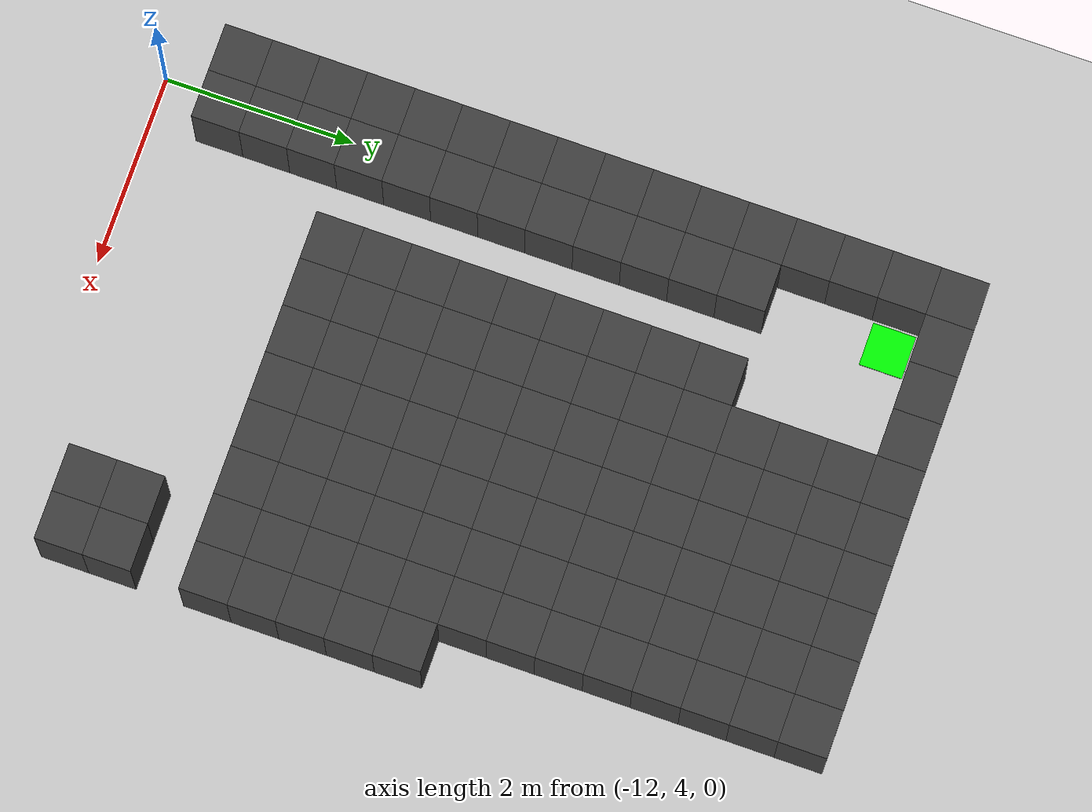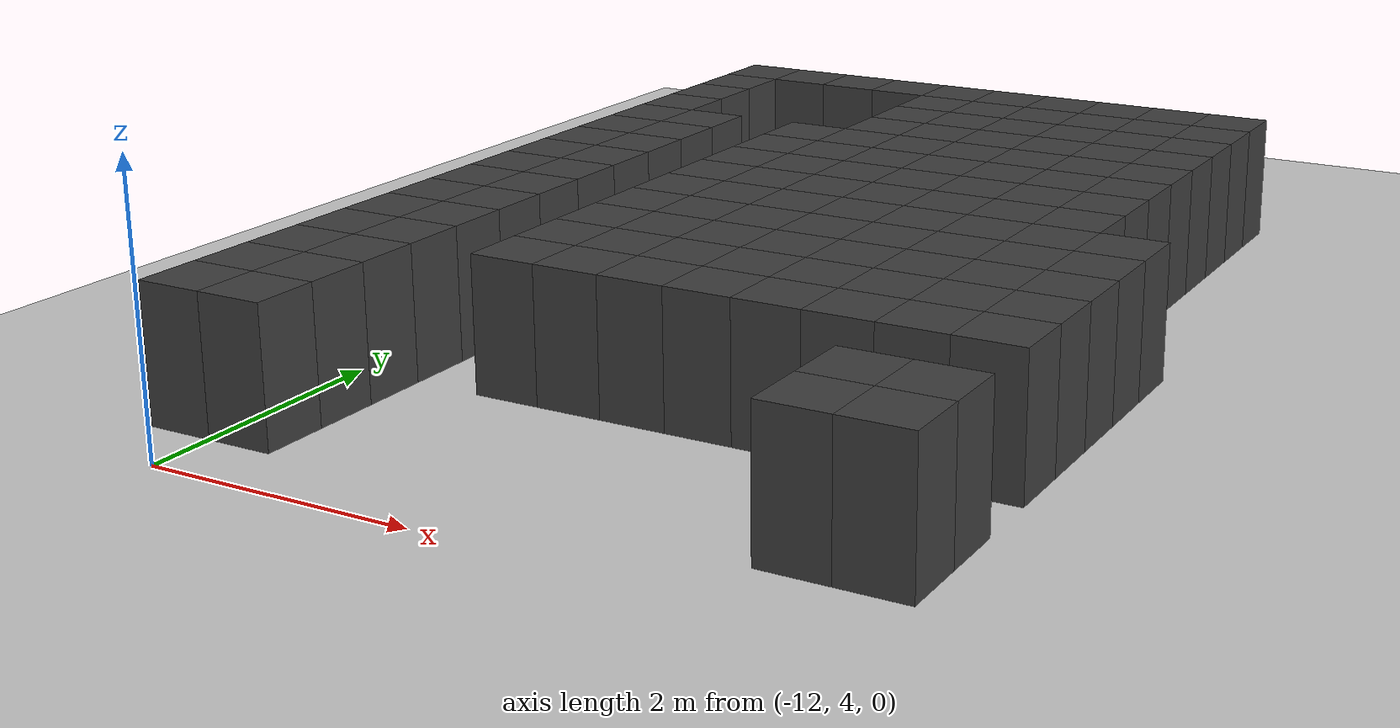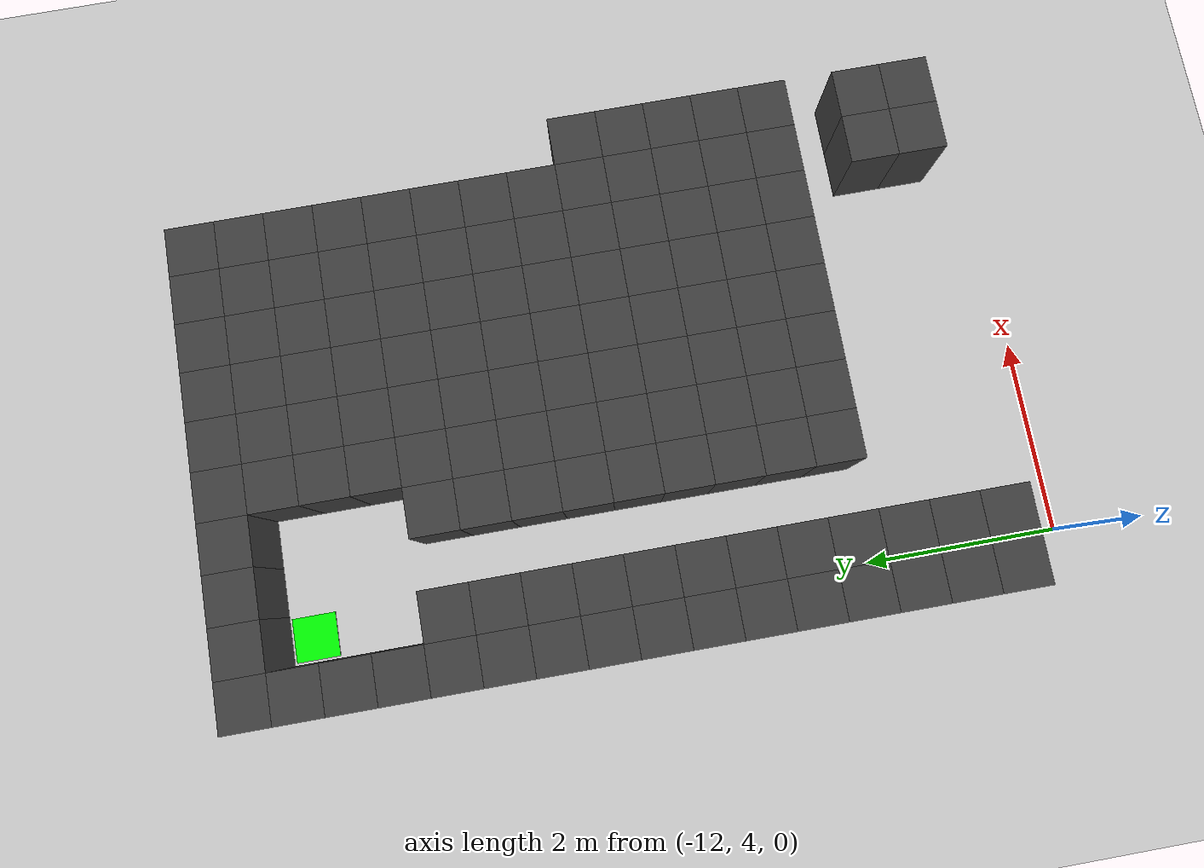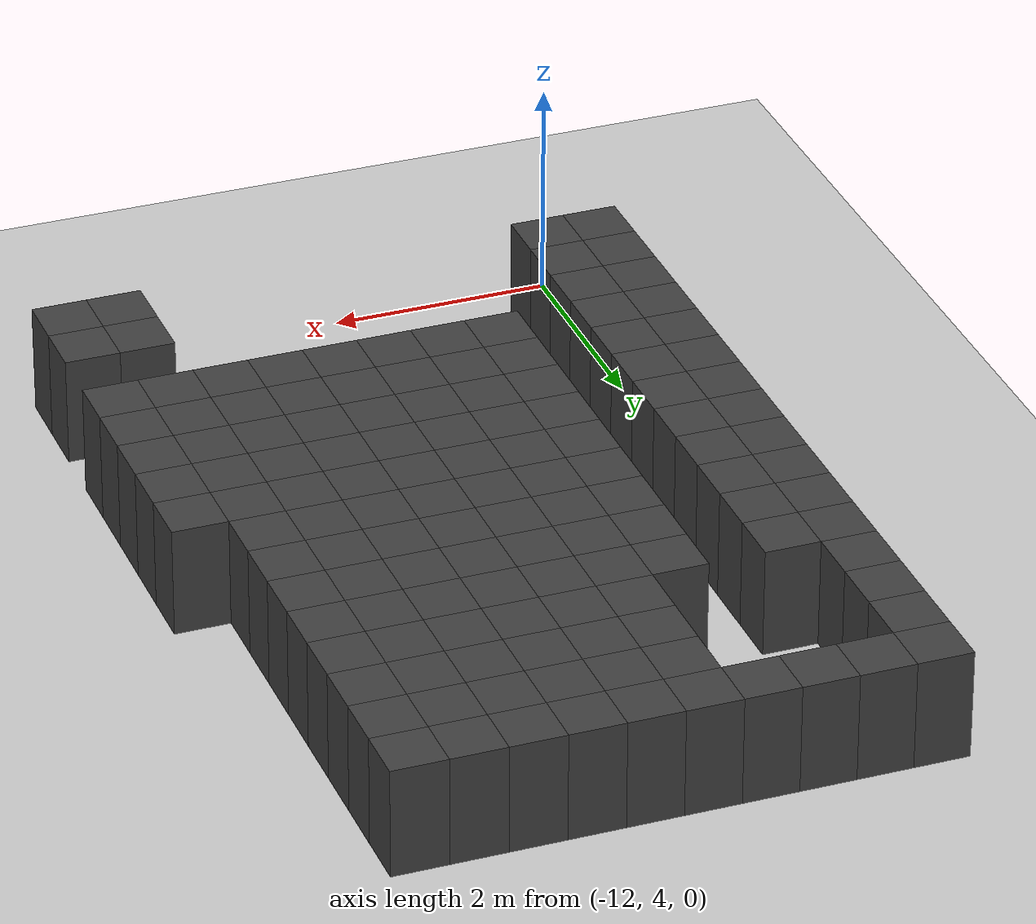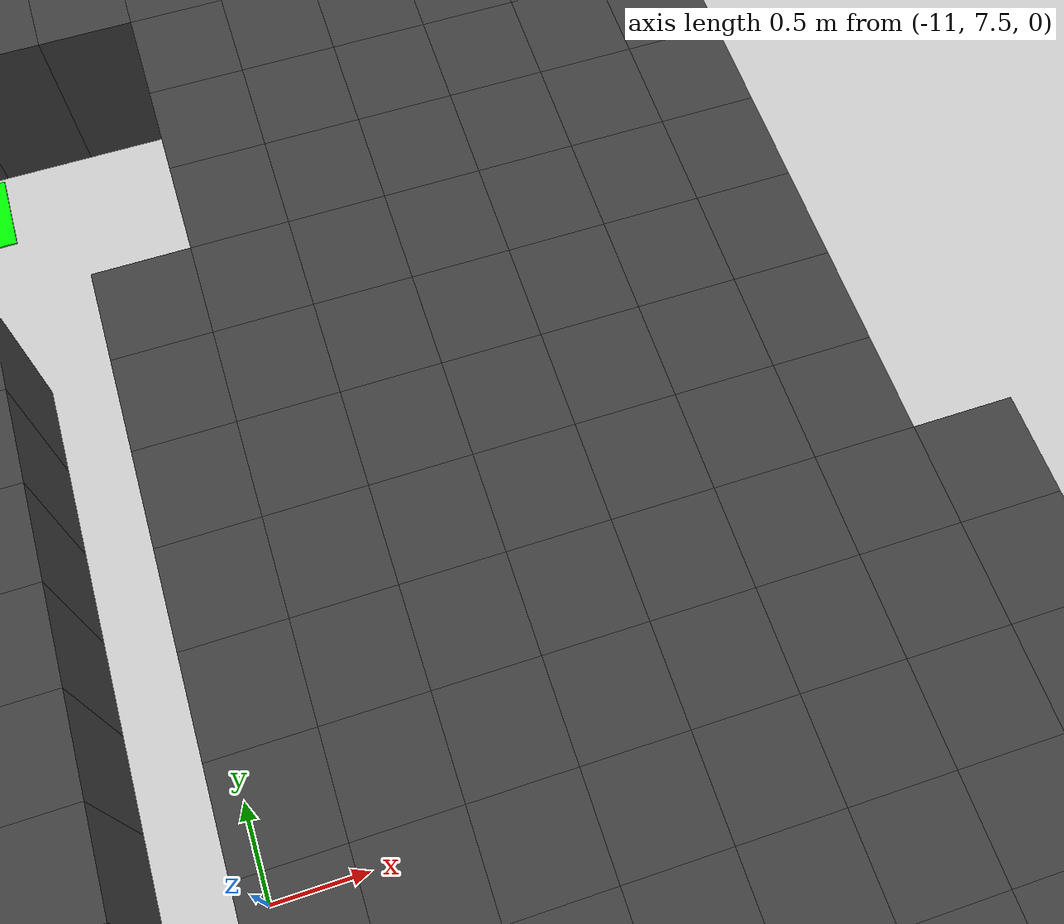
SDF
<sdf version="1.7">
 <world name="map_14056">
  <model name="ground_plane">
   <static>true</static>
   <link name="link">
    <collision name="collision">
     <geometry><plane><normal>0 0 1</normal><size>200 200</size></plane></geometry>
    </collision>
    <visual name="visual">
     <geometry><plane><normal>0 0 1</normal><size>200 200</size></plane></geometry>
     <material><ambient>0.8 0.8 0.8 1</ambient><diffuse>0.8 0.8 0.8 1</diffuse></material>
    </visual>
   </link>
  </model>
  <model name="maze_environment">
   <static>true</static>
   <link name="wall_0">
    <pose>-12.250 12.250 0.500 0 0 0</pose>
    <collision name="col"><geometry><box><size>0.5 0.5 1.0</size></box></geometry></collision>
    <visual name="vis">
     <geometry><box><size>0.5 0.5 1.0</size></box></geometry>
     <material><ambient>0.15 0.15 0.15 1</ambient><diffuse>0.25 0.25 0.25 1</diffuse></material>
    </visual>
   </link>
   <link name="wall_1">
    <pose>-11.750 12.250 0.500 0 0 0</pose>
    <collision name="col"><geometry><box><size>0.5 0.5 1.0</size></box></geometry></collision>
    <visual name="vis">
     <geometry><box><size>0.5 0.5 1.0</size></box></geometry>
     <material><ambient>0.15 0.15 0.15 1</ambient><diffuse>0.25 0.25 0.25 1</diffuse></material>
    </visual>
   </link>
   <link name="wall_2">
    <pose>-11.250 12.250 0.500 0 0 0</pose>
    <collision name="col"><geometry><box><size>0.5 0.5 1.0</size></box></geometry></collision>
    <visual name="vis">
     <geometry><box><size>0.5 0.5 1.0</size></box></geometry>
     <material><ambient>0.15 0.15 0.15 1</ambient><diffuse>0.25 0.25 0.25 1</diffuse></material>
    </visual>
   </link>
   <link name="wall_3">
    <pose>-10.750 12.250 0.500 0 0 0</pose>
    <collision name="col"><geometry><box><size>0.5 0.5 1.0</size></box></geometry></collision>
    <visual name="vis">
     <geometry><box><size>0.5 0.5 1.0</size></box></geometry>
     <material><ambient>0.15 0.15 0.15 1</ambient><diffuse>0.25 0.25 0.25 1</diffuse></material>
    </visual>
   </link>
   <link name="wall_4">
    <pose>-10.250 12.250 0.500 0 0 0</pose>
    <collision name="col"><geometry><box><size>0.5 0.5 1.0</size></box></geometry></collision>
    <visual name="vis">
     <geometry><box><size>0.5 0.5 1.0</size></box></geometry>
     <material><ambient>0.15 0.15 0.15 1</ambient><diffuse>0.25 0.25 0.25 1</diffuse></material>
    </visual>
   </link>
   <link name="wall_5">
    <pose>-9.750 12.250 0.500 0 0 0</pose>
    <collision name="col"><geometry><box><size>0.5 0.5 1.0</size></box></geometry></collision>
    <visual name="vis">
     <geometry><box><size>0.5 0.5 1.0</size></box></geometry>
     <material><ambient>0.15 0.15 0.15 1</ambient><diffuse>0.25 0.25 0.25 1</diffuse></material>
    </visual>
   </link>
   <link name="wall_6">
    <pose>-9.250 12.250 0.500 0 0 0</pose>
    <collision name="col"><geometry><box><size>0.5 0.5 1.0</size></box></geometry></collision>
    <visual name="vis">
     <geometry><box><size>0.5 0.5 1.0</size></box></geometry>
     <material><ambient>0.15 0.15 0.15 1</ambient><diffuse>0.25 0.25 0.25 1</diffuse></material>
    </visual>
   </link>
   <link name="wall_7">
    <pose>-8.750 12.250 0.500 0 0 0</pose>
    <collision name="col"><geometry><box><size>0.5 0.5 1.0</size></box></geometry></collision>
    <visual name="vis">
     <geometry><box><size>0.5 0.5 1.0</size></box></geometry>
     <material><ambient>0.15 0.15 0.15 1</ambient><diffuse>0.25 0.25 0.25 1</diffuse></material>
    </visual>
   </link>
   <link name="wall_8">
    <pose>-8.250 12.250 0.500 0 0 0</pose>
    <collision name="col"><geometry><box><size>0.5 0.5 1.0</size></box></geometry></collision>
    <visual name="vis">
     <geometry><box><size>0.5 0.5 1.0</size></box></geometry>
     <material><ambient>0.15 0.15 0.15 1</ambient><diffuse>0.25 0.25 0.25 1</diffuse></material>
    </visual>
   </link>
   <link name="wall_9">
    <pose>-7.750 12.250 0.500 0 0 0</pose>
    <collision name="col"><geometry><box><size>0.5 0.5 1.0</size></box></geometry></collision>
    <visual name="vis">
     <geometry><box><size>0.5 0.5 1.0</size></box></geometry>
     <material><ambient>0.15 0.15 0.15 1</ambient><diffuse>0.25 0.25 0.25 1</diffuse></material>
    </visual>
   </link>
   <link name="wall_50">
    <pose>-12.250 11.750 0.500 0 0 0</pose>
    <collision name="col"><geometry><box><size>0.5 0.5 1.0</size></box></geometry></collision>
    <visual name="vis">
     <geometry><box><size>0.5 0.5 1.0</size></box></geometry>
     <material><ambient>0.15 0.15 0.15 1</ambient><diffuse>0.25 0.25 0.25 1</diffuse></material>
    </visual>
   </link>
   <link name="wall_51">
    <pose>-10.250 11.750 0.500 0 0 0</pose>
    <collision name="col"><geometry><box><size>0.5 0.5 1.0</size></box></geometry></collision>
    <visual name="vis">
     <geometry><box><size>0.5 0.5 1.0</size></box></geometry>
     <material><ambient>0.15 0.15 0.15 1</ambient><diffuse>0.25 0.25 0.25 1</diffuse></material>
    </visual>
   </link>
   <link name="wall_52">
    <pose>-9.750 11.750 0.500 0 0 0</pose>
    <collision name="col"><geometry><box><size>0.5 0.5 1.0</size></box></geometry></collision>
    <visual name="vis">
     <geometry><box><size>0.5 0.5 1.0</size></box></geometry>
     <material><ambient>0.15 0.15 0.15 1</ambient><diffuse>0.25 0.25 0.25 1</diffuse></material>
    </visual>
   </link>
   <link name="wall_53">
    <pose>-9.250 11.750 0.500 0 0 0</pose>
    <collision name="col"><geometry><box><size>0.5 0.5 1.0</size></box></geometry></collision>
    <visual name="vis">
     <geometry><box><size>0.5 0.5 1.0</size></box></geometry>
     <material><ambient>0.15 0.15 0.15 1</ambient><diffuse>0.25 0.25 0.25 1</diffuse></material>
    </visual>
   </link>
   <link name="wall_54">
    <pose>-8.750 11.750 0.500 0 0 0</pose>
    <collision name="col"><geometry><box><size>0.5 0.5 1.0</size></box></geometry></collision>
    <visual name="vis">
     <geometry><box><size>0.5 0.5 1.0</size></box></geometry>
     <material><ambient>0.15 0.15 0.15 1</ambient><diffuse>0.25 0.25 0.25 1</diffuse></material>
    </visual>
   </link>
   <link name="wall_55">
    <pose>-8.250 11.750 0.500 0 0 0</pose>
    <collision name="col"><geometry><box><size>0.5 0.5 1.0</size></box></geometry></collision>
    <visual name="vis">
     <geometry><box><size>0.5 0.5 1.0</size></box></geometry>
     <material><ambient>0.15 0.15 0.15 1</ambient><diffuse>0.25 0.25 0.25 1</diffuse></material>
    </visual>
   </link>
   <link name="wall_56">
    <pose>-7.750 11.750 0.500 0 0 0</pose>
    <collision name="col"><geometry><box><size>0.5 0.5 1.0</size></box></geometry></collision>
    <visual name="vis">
     <geometry><box><size>0.5 0.5 1.0</size></box></geometry>
     <material><ambient>0.15 0.15 0.15 1</ambient><diffuse>0.25 0.25 0.25 1</diffuse></material>
    </visual>
   </link>
   <link name="wall_97">
    <pose>-12.250 11.250 0.500 0 0 0</pose>
    <collision name="col"><geometry><box><size>0.5 0.5 1.0</size></box></geometry></collision>
    <visual name="vis">
     <geometry><box><size>0.5 0.5 1.0</size></box></geometry>
     <material><ambient>0.15 0.15 0.15 1</ambient><diffuse>0.25 0.25 0.25 1</diffuse></material>
    </visual>
   </link>
   <link name="wall_98">
    <pose>-10.250 11.250 0.500 0 0 0</pose>
    <collision name="col"><geometry><box><size>0.5 0.5 1.0</size></box></geometry></collision>
    <visual name="vis">
     <geometry><box><size>0.5 0.5 1.0</size></box></geometry>
     <material><ambient>0.15 0.15 0.15 1</ambient><diffuse>0.25 0.25 0.25 1</diffuse></material>
    </visual>
   </link>
   <link name="wall_99">
    <pose>-9.750 11.250 0.500 0 0 0</pose>
    <collision name="col"><geometry><box><size>0.5 0.5 1.0</size></box></geometry></collision>
    <visual name="vis">
     <geometry><box><size>0.5 0.5 1.0</size></box></geometry>
     <material><ambient>0.15 0.15 0.15 1</ambient><diffuse>0.25 0.25 0.25 1</diffuse></material>
    </visual>
   </link>
   <link name="wall_100">
    <pose>-9.250 11.250 0.500 0 0 0</pose>
    <collision name="col"><geometry><box><size>0.5 0.5 1.0</size></box></geometry></collision>
    <visual name="vis">
     <geometry><box><size>0.5 0.5 1.0</size></box></geometry>
     <material><ambient>0.15 0.15 0.15 1</ambient><diffuse>0.25 0.25 0.25 1</diffuse></material>
    </visual>
   </link>
   <link name="wall_101">
    <pose>-8.750 11.250 0.500 0 0 0</pose>
    <collision name="col"><geometry><box><size>0.5 0.5 1.0</size></box></geometry></collision>
    <visual name="vis">
     <geometry><box><size>0.5 0.5 1.0</size></box></geometry>
     <material><ambient>0.15 0.15 0.15 1</ambient><diffuse>0.25 0.25 0.25 1</diffuse></material>
    </visual>
   </link>
   <link name="wall_102">
    <pose>-8.250 11.250 0.500 0 0 0</pose>
    <collision name="col"><geometry><box><size>0.5 0.5 1.0</size></box></geometry></collision>
    <visual name="vis">
     <geometry><box><size>0.5 0.5 1.0</size></box></geometry>
     <material><ambient>0.15 0.15 0.15 1</ambient><diffuse>0.25 0.25 0.25 1</diffuse></material>
    </visual>
   </link>
   <link name="wall_103">
    <pose>-7.750 11.250 0.500 0 0 0</pose>
    <collision name="col"><geometry><box><size>0.5 0.5 1.0</size></box></geometry></collision>
    <visual name="vis">
     <geometry><box><size>0.5 0.5 1.0</size></box></geometry>
     <material><ambient>0.15 0.15 0.15 1</ambient><diffuse>0.25 0.25 0.25 1</diffuse></material>
    </visual>
   </link>
   <link name="wall_136">
    <pose>-12.250 10.750 0.500 0 0 0</pose>
    <collision name="col"><geometry><box><size>0.5 0.5 1.0</size></box></geometry></collision>
    <visual name="vis">
     <geometry><box><size>0.5 0.5 1.0</size></box></geometry>
     <material><ambient>0.15 0.15 0.15 1</ambient><diffuse>0.25 0.25 0.25 1</diffuse></material>
    </visual>
   </link>
   <link name="wall_137">
    <pose>-10.250 10.750 0.500 0 0 0</pose>
    <collision name="col"><geometry><box><size>0.5 0.5 1.0</size></box></geometry></collision>
    <visual name="vis">
     <geometry><box><size>0.5 0.5 1.0</size></box></geometry>
     <material><ambient>0.15 0.15 0.15 1</ambient><diffuse>0.25 0.25 0.25 1</diffuse></material>
    </visual>
   </link>
   <link name="wall_138">
    <pose>-9.750 10.750 0.500 0 0 0</pose>
    <collision name="col"><geometry><box><size>0.5 0.5 1.0</size></box></geometry></collision>
    <visual name="vis">
     <geometry><box><size>0.5 0.5 1.0</size></box></geometry>
     <material><ambient>0.15 0.15 0.15 1</ambient><diffuse>0.25 0.25 0.25 1</diffuse></material>
    </visual>
   </link>
   <link name="wall_139">
    <pose>-9.250 10.750 0.500 0 0 0</pose>
    <collision name="col"><geometry><box><size>0.5 0.5 1.0</size></box></geometry></collision>
    <visual name="vis">
     <geometry><box><size>0.5 0.5 1.0</size></box></geometry>
     <material><ambient>0.15 0.15 0.15 1</ambient><diffuse>0.25 0.25 0.25 1</diffuse></material>
    </visual>
   </link>
   <link name="wall_140">
    <pose>-8.750 10.750 0.500 0 0 0</pose>
    <collision name="col"><geometry><box><size>0.5 0.5 1.0</size></box></geometry></collision>
    <visual name="vis">
     <geometry><box><size>0.5 0.5 1.0</size></box></geometry>
     <material><ambient>0.15 0.15 0.15 1</ambient><diffuse>0.25 0.25 0.25 1</diffuse></material>
    </visual>
   </link>
   <link name="wall_141">
    <pose>-8.250 10.750 0.500 0 0 0</pose>
    <collision name="col"><geometry><box><size>0.5 0.5 1.0</size></box></geometry></collision>
    <visual name="vis">
     <geometry><box><size>0.5 0.5 1.0</size></box></geometry>
     <material><ambient>0.15 0.15 0.15 1</ambient><diffuse>0.25 0.25 0.25 1</diffuse></material>
    </visual>
   </link>
   <link name="wall_142">
    <pose>-7.750 10.750 0.500 0 0 0</pose>
    <collision name="col"><geometry><box><size>0.5 0.5 1.0</size></box></geometry></collision>
    <visual name="vis">
     <geometry><box><size>0.5 0.5 1.0</size></box></geometry>
     <material><ambient>0.15 0.15 0.15 1</ambient><diffuse>0.25 0.25 0.25 1</diffuse></material>
    </visual>
   </link>
   <link name="wall_175">
    <pose>-12.250 10.250 0.500 0 0 0</pose>
    <collision name="col"><geometry><box><size>0.5 0.5 1.0</size></box></geometry></collision>
    <visual name="vis">
     <geometry><box><size>0.5 0.5 1.0</size></box></geometry>
     <material><ambient>0.15 0.15 0.15 1</ambient><diffuse>0.25 0.25 0.25 1</diffuse></material>
    </visual>
   </link>
   <link name="wall_176">
    <pose>-11.750 10.250 0.500 0 0 0</pose>
    <collision name="col"><geometry><box><size>0.5 0.5 1.0</size></box></geometry></collision>
    <visual name="vis">
     <geometry><box><size>0.5 0.5 1.0</size></box></geometry>
     <material><ambient>0.15 0.15 0.15 1</ambient><diffuse>0.25 0.25 0.25 1</diffuse></material>
    </visual>
   </link>
   <link name="wall_177">
    <pose>-10.750 10.250 0.500 0 0 0</pose>
    <collision name="col"><geometry><box><size>0.5 0.5 1.0</size></box></geometry></collision>
    <visual name="vis">
     <geometry><box><size>0.5 0.5 1.0</size></box></geometry>
     <material><ambient>0.15 0.15 0.15 1</ambient><diffuse>0.25 0.25 0.25 1</diffuse></material>
    </visual>
   </link>
   <link name="wall_178">
    <pose>-10.250 10.250 0.500 0 0 0</pose>
    <collision name="col"><geometry><box><size>0.5 0.5 1.0</size></box></geometry></collision>
    <visual name="vis">
     <geometry><box><size>0.5 0.5 1.0</size></box></geometry>
     <material><ambient>0.15 0.15 0.15 1</ambient><diffuse>0.25 0.25 0.25 1</diffuse></material>
    </visual>
   </link>
   <link name="wall_179">
    <pose>-9.750 10.250 0.500 0 0 0</pose>
    <collision name="col"><geometry><box><size>0.5 0.5 1.0</size></box></geometry></collision>
    <visual name="vis">
     <geometry><box><size>0.5 0.5 1.0</size></box></geometry>
     <material><ambient>0.15 0.15 0.15 1</ambient><diffuse>0.25 0.25 0.25 1</diffuse></material>
    </visual>
   </link>
   <link name="wall_180">
    <pose>-9.250 10.250 0.500 0 0 0</pose>
    <collision name="col"><geometry><box><size>0.5 0.5 1.0</size></box></geometry></collision>
    <visual name="vis">
     <geometry><box><size>0.5 0.5 1.0</size></box></geometry>
     <material><ambient>0.15 0.15 0.15 1</ambient><diffuse>0.25 0.25 0.25 1</diffuse></material>
    </visual>
   </link>
   <link name="wall_181">
    <pose>-8.750 10.250 0.500 0 0 0</pose>
    <collision name="col"><geometry><box><size>0.5 0.5 1.0</size></box></geometry></collision>
    <visual name="vis">
     <geometry><box><size>0.5 0.5 1.0</size></box></geometry>
     <material><ambient>0.15 0.15 0.15 1</ambient><diffuse>0.25 0.25 0.25 1</diffuse></material>
    </visual>
   </link>
   <link name="wall_182">
    <pose>-8.250 10.250 0.500 0 0 0</pose>
    <collision name="col"><geometry><box><size>0.5 0.5 1.0</size></box></geometry></collision>
    <visual name="vis">
     <geometry><box><size>0.5 0.5 1.0</size></box></geometry>
     <material><ambient>0.15 0.15 0.15 1</ambient><diffuse>0.25 0.25 0.25 1</diffuse></material>
    </visual>
   </link>
   <link name="wall_183">
    <pose>-7.750 10.250 0.500 0 0 0</pose>
    <collision name="col"><geometry><box><size>0.5 0.5 1.0</size></box></geometry></collision>
    <visual name="vis">
     <geometry><box><size>0.5 0.5 1.0</size></box></geometry>
     <material><ambient>0.15 0.15 0.15 1</ambient><diffuse>0.25 0.25 0.25 1</diffuse></material>
    </visual>
   </link>
   <link name="wall_216">
    <pose>-12.250 9.750 0.500 0 0 0</pose>
    <collision name="col"><geometry><box><size>0.5 0.5 1.0</size></box></geometry></collision>
    <visual name="vis">
     <geometry><box><size>0.5 0.5 1.0</size></box></geometry>
     <material><ambient>0.15 0.15 0.15 1</ambient><diffuse>0.25 0.25 0.25 1</diffuse></material>
    </visual>
   </link>
   <link name="wall_217">
    <pose>-11.750 9.750 0.500 0 0 0</pose>
    <collision name="col"><geometry><box><size>0.5 0.5 1.0</size></box></geometry></collision>
    <visual name="vis">
     <geometry><box><size>0.5 0.5 1.0</size></box></geometry>
     <material><ambient>0.15 0.15 0.15 1</ambient><diffuse>0.25 0.25 0.25 1</diffuse></material>
    </visual>
   </link>
   <link name="wall_218">
    <pose>-10.750 9.750 0.500 0 0 0</pose>
    <collision name="col"><geometry><box><size>0.5 0.5 1.0</size></box></geometry></collision>
    <visual name="vis">
     <geometry><box><size>0.5 0.5 1.0</size></box></geometry>
     <material><ambient>0.15 0.15 0.15 1</ambient><diffuse>0.25 0.25 0.25 1</diffuse></material>
    </visual>
   </link>
   <link name="wall_219">
    <pose>-10.250 9.750 0.500 0 0 0</pose>
    <collision name="col"><geometry><box><size>0.5 0.5 1.0</size></box></geometry></collision>
    <visual name="vis">
     <geometry><box><size>0.5 0.5 1.0</size></box></geometry>
     <material><ambient>0.15 0.15 0.15 1</ambient><diffuse>0.25 0.25 0.25 1</diffuse></material>
    </visual>
   </link>
   <link name="wall_220">
    <pose>-9.750 9.750 0.500 0 0 0</pose>
    <collision name="col"><geometry><box><size>0.5 0.5 1.0</size></box></geometry></collision>
    <visual name="vis">
     <geometry><box><size>0.5 0.5 1.0</size></box></geometry>
     <material><ambient>0.15 0.15 0.15 1</ambient><diffuse>0.25 0.25 0.25 1</diffuse></material>
    </visual>
   </link>
   <link name="wall_221">
    <pose>-9.250 9.750 0.500 0 0 0</pose>
    <collision name="col"><geometry><box><size>0.5 0.5 1.0</size></box></geometry></collision>
    <visual name="vis">
     <geometry><box><size>0.5 0.5 1.0</size></box></geometry>
     <material><ambient>0.15 0.15 0.15 1</ambient><diffuse>0.25 0.25 0.25 1</diffuse></material>
    </visual>
   </link>
   <link name="wall_222">
    <pose>-8.750 9.750 0.500 0 0 0</pose>
    <collision name="col"><geometry><box><size>0.5 0.5 1.0</size></box></geometry></collision>
    <visual name="vis">
     <geometry><box><size>0.5 0.5 1.0</size></box></geometry>
     <material><ambient>0.15 0.15 0.15 1</ambient><diffuse>0.25 0.25 0.25 1</diffuse></material>
    </visual>
   </link>
   <link name="wall_223">
    <pose>-8.250 9.750 0.500 0 0 0</pose>
    <collision name="col"><geometry><box><size>0.5 0.5 1.0</size></box></geometry></collision>
    <visual name="vis">
     <geometry><box><size>0.5 0.5 1.0</size></box></geometry>
     <material><ambient>0.15 0.15 0.15 1</ambient><diffuse>0.25 0.25 0.25 1</diffuse></material>
    </visual>
   </link>
   <link name="wall_224">
    <pose>-7.750 9.750 0.500 0 0 0</pose>
    <collision name="col"><geometry><box><size>0.5 0.5 1.0</size></box></geometry></collision>
    <visual name="vis">
     <geometry><box><size>0.5 0.5 1.0</size></box></geometry>
     <material><ambient>0.15 0.15 0.15 1</ambient><diffuse>0.25 0.25 0.25 1</diffuse></material>
    </visual>
   </link>
   <link name="wall_257">
    <pose>-12.250 9.250 0.500 0 0 0</pose>
    <collision name="col"><geometry><box><size>0.5 0.5 1.0</size></box></geometry></collision>
    <visual name="vis">
     <geometry><box><size>0.5 0.5 1.0</size></box></geometry>
     <material><ambient>0.15 0.15 0.15 1</ambient><diffuse>0.25 0.25 0.25 1</diffuse></material>
    </visual>
   </link>
   <link name="wall_258">
    <pose>-11.750 9.250 0.500 0 0 0</pose>
    <collision name="col"><geometry><box><size>0.5 0.5 1.0</size></box></geometry></collision>
    <visual name="vis">
     <geometry><box><size>0.5 0.5 1.0</size></box></geometry>
     <material><ambient>0.15 0.15 0.15 1</ambient><diffuse>0.25 0.25 0.25 1</diffuse></material>
    </visual>
   </link>
   <link name="wall_259">
    <pose>-10.750 9.250 0.500 0 0 0</pose>
    <collision name="col"><geometry><box><size>0.5 0.5 1.0</size></box></geometry></collision>
    <visual name="vis">
     <geometry><box><size>0.5 0.5 1.0</size></box></geometry>
     <material><ambient>0.15 0.15 0.15 1</ambient><diffuse>0.25 0.25 0.25 1</diffuse></material>
    </visual>
   </link>
   <link name="wall_260">
    <pose>-10.250 9.250 0.500 0 0 0</pose>
    <collision name="col"><geometry><box><size>0.5 0.5 1.0</size></box></geometry></collision>
    <visual name="vis">
     <geometry><box><size>0.5 0.5 1.0</size></box></geometry>
     <material><ambient>0.15 0.15 0.15 1</ambient><diffuse>0.25 0.25 0.25 1</diffuse></material>
    </visual>
   </link>
   <link name="wall_261">
    <pose>-9.750 9.250 0.500 0 0 0</pose>
    <collision name="col"><geometry><box><size>0.5 0.5 1.0</size></box></geometry></collision>
    <visual name="vis">
     <geometry><box><size>0.5 0.5 1.0</size></box></geometry>
     <material><ambient>0.15 0.15 0.15 1</ambient><diffuse>0.25 0.25 0.25 1</diffuse></material>
    </visual>
   </link>
   <link name="wall_262">
    <pose>-9.250 9.250 0.500 0 0 0</pose>
    <collision name="col"><geometry><box><size>0.5 0.5 1.0</size></box></geometry></collision>
    <visual name="vis">
     <geometry><box><size>0.5 0.5 1.0</size></box></geometry>
     <material><ambient>0.15 0.15 0.15 1</ambient><diffuse>0.25 0.25 0.25 1</diffuse></material>
    </visual>
   </link>
   <link name="wall_263">
    <pose>-8.750 9.250 0.500 0 0 0</pose>
    <collision name="col"><geometry><box><size>0.5 0.5 1.0</size></box></geometry></collision>
    <visual name="vis">
     <geometry><box><size>0.5 0.5 1.0</size></box></geometry>
     <material><ambient>0.15 0.15 0.15 1</ambient><diffuse>0.25 0.25 0.25 1</diffuse></material>
    </visual>
   </link>
   <link name="wall_264">
    <pose>-8.250 9.250 0.500 0 0 0</pose>
    <collision name="col"><geometry><box><size>0.5 0.5 1.0</size></box></geometry></collision>
    <visual name="vis">
     <geometry><box><size>0.5 0.5 1.0</size></box></geometry>
     <material><ambient>0.15 0.15 0.15 1</ambient><diffuse>0.25 0.25 0.25 1</diffuse></material>
    </visual>
   </link>
   <link name="wall_265">
    <pose>-7.750 9.250 0.500 0 0 0</pose>
    <collision name="col"><geometry><box><size>0.5 0.5 1.0</size></box></geometry></collision>
    <visual name="vis">
     <geometry><box><size>0.5 0.5 1.0</size></box></geometry>
     <material><ambient>0.15 0.15 0.15 1</ambient><diffuse>0.25 0.25 0.25 1</diffuse></material>
    </visual>
   </link>
   <link name="wall_290">
    <pose>-12.250 8.750 0.500 0 0 0</pose>
    <collision name="col"><geometry><box><size>0.5 0.5 1.0</size></box></geometry></collision>
    <visual name="vis">
     <geometry><box><size>0.5 0.5 1.0</size></box></geometry>
     <material><ambient>0.15 0.15 0.15 1</ambient><diffuse>0.25 0.25 0.25 1</diffuse></material>
    </visual>
   </link>
   <link name="wall_291">
    <pose>-11.750 8.750 0.500 0 0 0</pose>
    <collision name="col"><geometry><box><size>0.5 0.5 1.0</size></box></geometry></collision>
    <visual name="vis">
     <geometry><box><size>0.5 0.5 1.0</size></box></geometry>
     <material><ambient>0.15 0.15 0.15 1</ambient><diffuse>0.25 0.25 0.25 1</diffuse></material>
    </visual>
   </link>
   <link name="wall_292">
    <pose>-10.750 8.750 0.500 0 0 0</pose>
    <collision name="col"><geometry><box><size>0.5 0.5 1.0</size></box></geometry></collision>
    <visual name="vis">
     <geometry><box><size>0.5 0.5 1.0</size></box></geometry>
     <material><ambient>0.15 0.15 0.15 1</ambient><diffuse>0.25 0.25 0.25 1</diffuse></material>
    </visual>
   </link>
   <link name="wall_293">
    <pose>-10.250 8.750 0.500 0 0 0</pose>
    <collision name="col"><geometry><box><size>0.5 0.5 1.0</size></box></geometry></collision>
    <visual name="vis">
     <geometry><box><size>0.5 0.5 1.0</size></box></geometry>
     <material><ambient>0.15 0.15 0.15 1</ambient><diffuse>0.25 0.25 0.25 1</diffuse></material>
    </visual>
   </link>
   <link name="wall_294">
    <pose>-9.750 8.750 0.500 0 0 0</pose>
    <collision name="col"><geometry><box><size>0.5 0.5 1.0</size></box></geometry></collision>
    <visual name="vis">
     <geometry><box><size>0.5 0.5 1.0</size></box></geometry>
     <material><ambient>0.15 0.15 0.15 1</ambient><diffuse>0.25 0.25 0.25 1</diffuse></material>
    </visual>
   </link>
   <link name="wall_295">
    <pose>-9.250 8.750 0.500 0 0 0</pose>
    <collision name="col"><geometry><box><size>0.5 0.5 1.0</size></box></geometry></collision>
    <visual name="vis">
     <geometry><box><size>0.5 0.5 1.0</size></box></geometry>
     <material><ambient>0.15 0.15 0.15 1</ambient><diffuse>0.25 0.25 0.25 1</diffuse></material>
    </visual>
   </link>
   <link name="wall_296">
    <pose>-8.750 8.750 0.500 0 0 0</pose>
    <collision name="col"><geometry><box><size>0.5 0.5 1.0</size></box></geometry></collision>
    <visual name="vis">
     <geometry><box><size>0.5 0.5 1.0</size></box></geometry>
     <material><ambient>0.15 0.15 0.15 1</ambient><diffuse>0.25 0.25 0.25 1</diffuse></material>
    </visual>
   </link>
   <link name="wall_297">
    <pose>-8.250 8.750 0.500 0 0 0</pose>
    <collision name="col"><geometry><box><size>0.5 0.5 1.0</size></box></geometry></collision>
    <visual name="vis">
     <geometry><box><size>0.5 0.5 1.0</size></box></geometry>
     <material><ambient>0.15 0.15 0.15 1</ambient><diffuse>0.25 0.25 0.25 1</diffuse></material>
    </visual>
   </link>
   <link name="wall_298">
    <pose>-7.750 8.750 0.500 0 0 0</pose>
    <collision name="col"><geometry><box><size>0.5 0.5 1.0</size></box></geometry></collision>
    <visual name="vis">
     <geometry><box><size>0.5 0.5 1.0</size></box></geometry>
     <material><ambient>0.15 0.15 0.15 1</ambient><diffuse>0.25 0.25 0.25 1</diffuse></material>
    </visual>
   </link>
   <link name="wall_318">
    <pose>-12.250 8.250 0.500 0 0 0</pose>
    <collision name="col"><geometry><box><size>0.5 0.5 1.0</size></box></geometry></collision>
    <visual name="vis">
     <geometry><box><size>0.5 0.5 1.0</size></box></geometry>
     <material><ambient>0.15 0.15 0.15 1</ambient><diffuse>0.25 0.25 0.25 1</diffuse></material>
    </visual>
   </link>
   <link name="wall_319">
    <pose>-11.750 8.250 0.500 0 0 0</pose>
    <collision name="col"><geometry><box><size>0.5 0.5 1.0</size></box></geometry></collision>
    <visual name="vis">
     <geometry><box><size>0.5 0.5 1.0</size></box></geometry>
     <material><ambient>0.15 0.15 0.15 1</ambient><diffuse>0.25 0.25 0.25 1</diffuse></material>
    </visual>
   </link>
   <link name="wall_320">
    <pose>-10.750 8.250 0.500 0 0 0</pose>
    <collision name="col"><geometry><box><size>0.5 0.5 1.0</size></box></geometry></collision>
    <visual name="vis">
     <geometry><box><size>0.5 0.5 1.0</size></box></geometry>
     <material><ambient>0.15 0.15 0.15 1</ambient><diffuse>0.25 0.25 0.25 1</diffuse></material>
    </visual>
   </link>
   <link name="wall_321">
    <pose>-10.250 8.250 0.500 0 0 0</pose>
    <collision name="col"><geometry><box><size>0.5 0.5 1.0</size></box></geometry></collision>
    <visual name="vis">
     <geometry><box><size>0.5 0.5 1.0</size></box></geometry>
     <material><ambient>0.15 0.15 0.15 1</ambient><diffuse>0.25 0.25 0.25 1</diffuse></material>
    </visual>
   </link>
   <link name="wall_322">
    <pose>-9.750 8.250 0.500 0 0 0</pose>
    <collision name="col"><geometry><box><size>0.5 0.5 1.0</size></box></geometry></collision>
    <visual name="vis">
     <geometry><box><size>0.5 0.5 1.0</size></box></geometry>
     <material><ambient>0.15 0.15 0.15 1</ambient><diffuse>0.25 0.25 0.25 1</diffuse></material>
    </visual>
   </link>
   <link name="wall_323">
    <pose>-9.250 8.250 0.500 0 0 0</pose>
    <collision name="col"><geometry><box><size>0.5 0.5 1.0</size></box></geometry></collision>
    <visual name="vis">
     <geometry><box><size>0.5 0.5 1.0</size></box></geometry>
     <material><ambient>0.15 0.15 0.15 1</ambient><diffuse>0.25 0.25 0.25 1</diffuse></material>
    </visual>
   </link>
   <link name="wall_324">
    <pose>-8.750 8.250 0.500 0 0 0</pose>
    <collision name="col"><geometry><box><size>0.5 0.5 1.0</size></box></geometry></collision>
    <visual name="vis">
     <geometry><box><size>0.5 0.5 1.0</size></box></geometry>
     <material><ambient>0.15 0.15 0.15 1</ambient><diffuse>0.25 0.25 0.25 1</diffuse></material>
    </visual>
   </link>
   <link name="wall_325">
    <pose>-8.250 8.250 0.500 0 0 0</pose>
    <collision name="col"><geometry><box><size>0.5 0.5 1.0</size></box></geometry></collision>
    <visual name="vis">
     <geometry><box><size>0.5 0.5 1.0</size></box></geometry>
     <material><ambient>0.15 0.15 0.15 1</ambient><diffuse>0.25 0.25 0.25 1</diffuse></material>
    </visual>
   </link>
   <link name="wall_326">
    <pose>-7.750 8.250 0.500 0 0 0</pose>
    <collision name="col"><geometry><box><size>0.5 0.5 1.0</size></box></geometry></collision>
    <visual name="vis">
     <geometry><box><size>0.5 0.5 1.0</size></box></geometry>
     <material><ambient>0.15 0.15 0.15 1</ambient><diffuse>0.25 0.25 0.25 1</diffuse></material>
    </visual>
   </link>
   <link name="wall_327">
    <pose>-7.250 8.250 0.500 0 0 0</pose>
    <collision name="col"><geometry><box><size>0.5 0.5 1.0</size></box></geometry></collision>
    <visual name="vis">
     <geometry><box><size>0.5 0.5 1.0</size></box></geometry>
     <material><ambient>0.15 0.15 0.15 1</ambient><diffuse>0.25 0.25 0.25 1</diffuse></material>
    </visual>
   </link>
   <link name="wall_345">
    <pose>-12.250 7.750 0.500 0 0 0</pose>
    <collision name="col"><geometry><box><size>0.5 0.5 1.0</size></box></geometry></collision>
    <visual name="vis">
     <geometry><box><size>0.5 0.5 1.0</size></box></geometry>
     <material><ambient>0.15 0.15 0.15 1</ambient><diffuse>0.25 0.25 0.25 1</diffuse></material>
    </visual>
   </link>
   <link name="wall_346">
    <pose>-11.750 7.750 0.500 0 0 0</pose>
    <collision name="col"><geometry><box><size>0.5 0.5 1.0</size></box></geometry></collision>
    <visual name="vis">
     <geometry><box><size>0.5 0.5 1.0</size></box></geometry>
     <material><ambient>0.15 0.15 0.15 1</ambient><diffuse>0.25 0.25 0.25 1</diffuse></material>
    </visual>
   </link>
   <link name="wall_347">
    <pose>-10.750 7.750 0.500 0 0 0</pose>
    <collision name="col"><geometry><box><size>0.5 0.5 1.0</size></box></geometry></collision>
    <visual name="vis">
     <geometry><box><size>0.5 0.5 1.0</size></box></geometry>
     <material><ambient>0.15 0.15 0.15 1</ambient><diffuse>0.25 0.25 0.25 1</diffuse></material>
    </visual>
   </link>
   <link name="wall_348">
    <pose>-10.250 7.750 0.500 0 0 0</pose>
    <collision name="col"><geometry><box><size>0.5 0.5 1.0</size></box></geometry></collision>
    <visual name="vis">
     <geometry><box><size>0.5 0.5 1.0</size></box></geometry>
     <material><ambient>0.15 0.15 0.15 1</ambient><diffuse>0.25 0.25 0.25 1</diffuse></material>
    </visual>
   </link>
   <link name="wall_349">
    <pose>-9.750 7.750 0.500 0 0 0</pose>
    <collision name="col"><geometry><box><size>0.5 0.5 1.0</size></box></geometry></collision>
    <visual name="vis">
     <geometry><box><size>0.5 0.5 1.0</size></box></geometry>
     <material><ambient>0.15 0.15 0.15 1</ambient><diffuse>0.25 0.25 0.25 1</diffuse></material>
    </visual>
   </link>
   <link name="wall_350">
    <pose>-9.250 7.750 0.500 0 0 0</pose>
    <collision name="col"><geometry><box><size>0.5 0.5 1.0</size></box></geometry></collision>
    <visual name="vis">
     <geometry><box><size>0.5 0.5 1.0</size></box></geometry>
     <material><ambient>0.15 0.15 0.15 1</ambient><diffuse>0.25 0.25 0.25 1</diffuse></material>
    </visual>
   </link>
   <link name="wall_351">
    <pose>-8.750 7.750 0.500 0 0 0</pose>
    <collision name="col"><geometry><box><size>0.5 0.5 1.0</size></box></geometry></collision>
    <visual name="vis">
     <geometry><box><size>0.5 0.5 1.0</size></box></geometry>
     <material><ambient>0.15 0.15 0.15 1</ambient><diffuse>0.25 0.25 0.25 1</diffuse></material>
    </visual>
   </link>
   <link name="wall_352">
    <pose>-8.250 7.750 0.500 0 0 0</pose>
    <collision name="col"><geometry><box><size>0.5 0.5 1.0</size></box></geometry></collision>
    <visual name="vis">
     <geometry><box><size>0.5 0.5 1.0</size></box></geometry>
     <material><ambient>0.15 0.15 0.15 1</ambient><diffuse>0.25 0.25 0.25 1</diffuse></material>
    </visual>
   </link>
   <link name="wall_353">
    <pose>-7.750 7.750 0.500 0 0 0</pose>
    <collision name="col"><geometry><box><size>0.5 0.5 1.0</size></box></geometry></collision>
    <visual name="vis">
     <geometry><box><size>0.5 0.5 1.0</size></box></geometry>
     <material><ambient>0.15 0.15 0.15 1</ambient><diffuse>0.25 0.25 0.25 1</diffuse></material>
    </visual>
   </link>
   <link name="wall_354">
    <pose>-7.250 7.750 0.500 0 0 0</pose>
    <collision name="col"><geometry><box><size>0.5 0.5 1.0</size></box></geometry></collision>
    <visual name="vis">
     <geometry><box><size>0.5 0.5 1.0</size></box></geometry>
     <material><ambient>0.15 0.15 0.15 1</ambient><diffuse>0.25 0.25 0.25 1</diffuse></material>
    </visual>
   </link>
   <link name="wall_374">
    <pose>-12.250 7.250 0.500 0 0 0</pose>
    <collision name="col"><geometry><box><size>0.5 0.5 1.0</size></box></geometry></collision>
    <visual name="vis">
     <geometry><box><size>0.5 0.5 1.0</size></box></geometry>
     <material><ambient>0.15 0.15 0.15 1</ambient><diffuse>0.25 0.25 0.25 1</diffuse></material>
    </visual>
   </link>
   <link name="wall_375">
    <pose>-11.750 7.250 0.500 0 0 0</pose>
    <collision name="col"><geometry><box><size>0.5 0.5 1.0</size></box></geometry></collision>
    <visual name="vis">
     <geometry><box><size>0.5 0.5 1.0</size></box></geometry>
     <material><ambient>0.15 0.15 0.15 1</ambient><diffuse>0.25 0.25 0.25 1</diffuse></material>
    </visual>
   </link>
   <link name="wall_376">
    <pose>-10.750 7.250 0.500 0 0 0</pose>
    <collision name="col"><geometry><box><size>0.5 0.5 1.0</size></box></geometry></collision>
    <visual name="vis">
     <geometry><box><size>0.5 0.5 1.0</size></box></geometry>
     <material><ambient>0.15 0.15 0.15 1</ambient><diffuse>0.25 0.25 0.25 1</diffuse></material>
    </visual>
   </link>
   <link name="wall_377">
    <pose>-10.250 7.250 0.500 0 0 0</pose>
    <collision name="col"><geometry><box><size>0.5 0.5 1.0</size></box></geometry></collision>
    <visual name="vis">
     <geometry><box><size>0.5 0.5 1.0</size></box></geometry>
     <material><ambient>0.15 0.15 0.15 1</ambient><diffuse>0.25 0.25 0.25 1</diffuse></material>
    </visual>
   </link>
   <link name="wall_378">
    <pose>-9.750 7.250 0.500 0 0 0</pose>
    <collision name="col"><geometry><box><size>0.5 0.5 1.0</size></box></geometry></collision>
    <visual name="vis">
     <geometry><box><size>0.5 0.5 1.0</size></box></geometry>
     <material><ambient>0.15 0.15 0.15 1</ambient><diffuse>0.25 0.25 0.25 1</diffuse></material>
    </visual>
   </link>
   <link name="wall_379">
    <pose>-9.250 7.250 0.500 0 0 0</pose>
    <collision name="col"><geometry><box><size>0.5 0.5 1.0</size></box></geometry></collision>
    <visual name="vis">
     <geometry><box><size>0.5 0.5 1.0</size></box></geometry>
     <material><ambient>0.15 0.15 0.15 1</ambient><diffuse>0.25 0.25 0.25 1</diffuse></material>
    </visual>
   </link>
   <link name="wall_380">
    <pose>-8.750 7.250 0.500 0 0 0</pose>
    <collision name="col"><geometry><box><size>0.5 0.5 1.0</size></box></geometry></collision>
    <visual name="vis">
     <geometry><box><size>0.5 0.5 1.0</size></box></geometry>
     <material><ambient>0.15 0.15 0.15 1</ambient><diffuse>0.25 0.25 0.25 1</diffuse></material>
    </visual>
   </link>
   <link name="wall_381">
    <pose>-8.250 7.250 0.500 0 0 0</pose>
    <collision name="col"><geometry><box><size>0.5 0.5 1.0</size></box></geometry></collision>
    <visual name="vis">
     <geometry><box><size>0.5 0.5 1.0</size></box></geometry>
     <material><ambient>0.15 0.15 0.15 1</ambient><diffuse>0.25 0.25 0.25 1</diffuse></material>
    </visual>
   </link>
   <link name="wall_382">
    <pose>-7.750 7.250 0.500 0 0 0</pose>
    <collision name="col"><geometry><box><size>0.5 0.5 1.0</size></box></geometry></collision>
    <visual name="vis">
     <geometry><box><size>0.5 0.5 1.0</size></box></geometry>
     <material><ambient>0.15 0.15 0.15 1</ambient><diffuse>0.25 0.25 0.25 1</diffuse></material>
    </visual>
   </link>
   <link name="wall_383">
    <pose>-7.250 7.250 0.500 0 0 0</pose>
    <collision name="col"><geometry><box><size>0.5 0.5 1.0</size></box></geometry></collision>
    <visual name="vis">
     <geometry><box><size>0.5 0.5 1.0</size></box></geometry>
     <material><ambient>0.15 0.15 0.15 1</ambient><diffuse>0.25 0.25 0.25 1</diffuse></material>
    </visual>
   </link>
   <link name="wall_403">
    <pose>-12.250 6.750 0.500 0 0 0</pose>
    <collision name="col"><geometry><box><size>0.5 0.5 1.0</size></box></geometry></collision>
    <visual name="vis">
     <geometry><box><size>0.5 0.5 1.0</size></box></geometry>
     <material><ambient>0.15 0.15 0.15 1</ambient><diffuse>0.25 0.25 0.25 1</diffuse></material>
    </visual>
   </link>
   <link name="wall_404">
    <pose>-11.750 6.750 0.500 0 0 0</pose>
    <collision name="col"><geometry><box><size>0.5 0.5 1.0</size></box></geometry></collision>
    <visual name="vis">
     <geometry><box><size>0.5 0.5 1.0</size></box></geometry>
     <material><ambient>0.15 0.15 0.15 1</ambient><diffuse>0.25 0.25 0.25 1</diffuse></material>
    </visual>
   </link>
   <link name="wall_405">
    <pose>-10.750 6.750 0.500 0 0 0</pose>
    <collision name="col"><geometry><box><size>0.5 0.5 1.0</size></box></geometry></collision>
    <visual name="vis">
     <geometry><box><size>0.5 0.5 1.0</size></box></geometry>
     <material><ambient>0.15 0.15 0.15 1</ambient><diffuse>0.25 0.25 0.25 1</diffuse></material>
    </visual>
   </link>
   <link name="wall_406">
    <pose>-10.250 6.750 0.500 0 0 0</pose>
    <collision name="col"><geometry><box><size>0.5 0.5 1.0</size></box></geometry></collision>
    <visual name="vis">
     <geometry><box><size>0.5 0.5 1.0</size></box></geometry>
     <material><ambient>0.15 0.15 0.15 1</ambient><diffuse>0.25 0.25 0.25 1</diffuse></material>
    </visual>
   </link>
   <link name="wall_407">
    <pose>-9.750 6.750 0.500 0 0 0</pose>
    <collision name="col"><geometry><box><size>0.5 0.5 1.0</size></box></geometry></collision>
    <visual name="vis">
     <geometry><box><size>0.5 0.5 1.0</size></box></geometry>
     <material><ambient>0.15 0.15 0.15 1</ambient><diffuse>0.25 0.25 0.25 1</diffuse></material>
    </visual>
   </link>
   <link name="wall_408">
    <pose>-9.250 6.750 0.500 0 0 0</pose>
    <collision name="col"><geometry><box><size>0.5 0.5 1.0</size></box></geometry></collision>
    <visual name="vis">
     <geometry><box><size>0.5 0.5 1.0</size></box></geometry>
     <material><ambient>0.15 0.15 0.15 1</ambient><diffuse>0.25 0.25 0.25 1</diffuse></material>
    </visual>
   </link>
   <link name="wall_409">
    <pose>-8.750 6.750 0.500 0 0 0</pose>
    <collision name="col"><geometry><box><size>0.5 0.5 1.0</size></box></geometry></collision>
    <visual name="vis">
     <geometry><box><size>0.5 0.5 1.0</size></box></geometry>
     <material><ambient>0.15 0.15 0.15 1</ambient><diffuse>0.25 0.25 0.25 1</diffuse></material>
    </visual>
   </link>
   <link name="wall_410">
    <pose>-8.250 6.750 0.500 0 0 0</pose>
    <collision name="col"><geometry><box><size>0.5 0.5 1.0</size></box></geometry></collision>
    <visual name="vis">
     <geometry><box><size>0.5 0.5 1.0</size></box></geometry>
     <material><ambient>0.15 0.15 0.15 1</ambient><diffuse>0.25 0.25 0.25 1</diffuse></material>
    </visual>
   </link>
   <link name="wall_411">
    <pose>-7.750 6.750 0.500 0 0 0</pose>
    <collision name="col"><geometry><box><size>0.5 0.5 1.0</size></box></geometry></collision>
    <visual name="vis">
     <geometry><box><size>0.5 0.5 1.0</size></box></geometry>
     <material><ambient>0.15 0.15 0.15 1</ambient><diffuse>0.25 0.25 0.25 1</diffuse></material>
    </visual>
   </link>
   <link name="wall_412">
    <pose>-7.250 6.750 0.500 0 0 0</pose>
    <collision name="col"><geometry><box><size>0.5 0.5 1.0</size></box></geometry></collision>
    <visual name="vis">
     <geometry><box><size>0.5 0.5 1.0</size></box></geometry>
     <material><ambient>0.15 0.15 0.15 1</ambient><diffuse>0.25 0.25 0.25 1</diffuse></material>
    </visual>
   </link>
   <link name="wall_429">
    <pose>-12.250 6.250 0.500 0 0 0</pose>
    <collision name="col"><geometry><box><size>0.5 0.5 1.0</size></box></geometry></collision>
    <visual name="vis">
     <geometry><box><size>0.5 0.5 1.0</size></box></geometry>
     <material><ambient>0.15 0.15 0.15 1</ambient><diffuse>0.25 0.25 0.25 1</diffuse></material>
    </visual>
   </link>
   <link name="wall_430">
    <pose>-11.750 6.250 0.500 0 0 0</pose>
    <collision name="col"><geometry><box><size>0.5 0.5 1.0</size></box></geometry></collision>
    <visual name="vis">
     <geometry><box><size>0.5 0.5 1.0</size></box></geometry>
     <material><ambient>0.15 0.15 0.15 1</ambient><diffuse>0.25 0.25 0.25 1</diffuse></material>
    </visual>
   </link>
   <link name="wall_431">
    <pose>-10.750 6.250 0.500 0 0 0</pose>
    <collision name="col"><geometry><box><size>0.5 0.5 1.0</size></box></geometry></collision>
    <visual name="vis">
     <geometry><box><size>0.5 0.5 1.0</size></box></geometry>
     <material><ambient>0.15 0.15 0.15 1</ambient><diffuse>0.25 0.25 0.25 1</diffuse></material>
    </visual>
   </link>
   <link name="wall_432">
    <pose>-10.250 6.250 0.500 0 0 0</pose>
    <collision name="col"><geometry><box><size>0.5 0.5 1.0</size></box></geometry></collision>
    <visual name="vis">
     <geometry><box><size>0.5 0.5 1.0</size></box></geometry>
     <material><ambient>0.15 0.15 0.15 1</ambient><diffuse>0.25 0.25 0.25 1</diffuse></material>
    </visual>
   </link>
   <link name="wall_433">
    <pose>-9.750 6.250 0.500 0 0 0</pose>
    <collision name="col"><geometry><box><size>0.5 0.5 1.0</size></box></geometry></collision>
    <visual name="vis">
     <geometry><box><size>0.5 0.5 1.0</size></box></geometry>
     <material><ambient>0.15 0.15 0.15 1</ambient><diffuse>0.25 0.25 0.25 1</diffuse></material>
    </visual>
   </link>
   <link name="wall_434">
    <pose>-9.250 6.250 0.500 0 0 0</pose>
    <collision name="col"><geometry><box><size>0.5 0.5 1.0</size></box></geometry></collision>
    <visual name="vis">
     <geometry><box><size>0.5 0.5 1.0</size></box></geometry>
     <material><ambient>0.15 0.15 0.15 1</ambient><diffuse>0.25 0.25 0.25 1</diffuse></material>
    </visual>
   </link>
   <link name="wall_435">
    <pose>-8.750 6.250 0.500 0 0 0</pose>
    <collision name="col"><geometry><box><size>0.5 0.5 1.0</size></box></geometry></collision>
    <visual name="vis">
     <geometry><box><size>0.5 0.5 1.0</size></box></geometry>
     <material><ambient>0.15 0.15 0.15 1</ambient><diffuse>0.25 0.25 0.25 1</diffuse></material>
    </visual>
   </link>
   <link name="wall_436">
    <pose>-8.250 6.250 0.500 0 0 0</pose>
    <collision name="col"><geometry><box><size>0.5 0.5 1.0</size></box></geometry></collision>
    <visual name="vis">
     <geometry><box><size>0.5 0.5 1.0</size></box></geometry>
     <material><ambient>0.15 0.15 0.15 1</ambient><diffuse>0.25 0.25 0.25 1</diffuse></material>
    </visual>
   </link>
   <link name="wall_437">
    <pose>-7.750 6.250 0.500 0 0 0</pose>
    <collision name="col"><geometry><box><size>0.5 0.5 1.0</size></box></geometry></collision>
    <visual name="vis">
     <geometry><box><size>0.5 0.5 1.0</size></box></geometry>
     <material><ambient>0.15 0.15 0.15 1</ambient><diffuse>0.25 0.25 0.25 1</diffuse></material>
    </visual>
   </link>
   <link name="wall_438">
    <pose>-7.250 6.250 0.500 0 0 0</pose>
    <collision name="col"><geometry><box><size>0.5 0.5 1.0</size></box></geometry></collision>
    <visual name="vis">
     <geometry><box><size>0.5 0.5 1.0</size></box></geometry>
     <material><ambient>0.15 0.15 0.15 1</ambient><diffuse>0.25 0.25 0.25 1</diffuse></material>
    </visual>
   </link>
   <link name="wall_452">
    <pose>-12.250 5.750 0.500 0 0 0</pose>
    <collision name="col"><geometry><box><size>0.5 0.5 1.0</size></box></geometry></collision>
    <visual name="vis">
     <geometry><box><size>0.5 0.5 1.0</size></box></geometry>
     <material><ambient>0.15 0.15 0.15 1</ambient><diffuse>0.25 0.25 0.25 1</diffuse></material>
    </visual>
   </link>
   <link name="wall_453">
    <pose>-11.750 5.750 0.500 0 0 0</pose>
    <collision name="col"><geometry><box><size>0.5 0.5 1.0</size></box></geometry></collision>
    <visual name="vis">
     <geometry><box><size>0.5 0.5 1.0</size></box></geometry>
     <material><ambient>0.15 0.15 0.15 1</ambient><diffuse>0.25 0.25 0.25 1</diffuse></material>
    </visual>
   </link>
   <link name="wall_468">
    <pose>-12.250 5.250 0.500 0 0 0</pose>
    <collision name="col"><geometry><box><size>0.5 0.5 1.0</size></box></geometry></collision>
    <visual name="vis">
     <geometry><box><size>0.5 0.5 1.0</size></box></geometry>
     <material><ambient>0.15 0.15 0.15 1</ambient><diffuse>0.25 0.25 0.25 1</diffuse></material>
    </visual>
   </link>
   <link name="wall_469">
    <pose>-11.750 5.250 0.500 0 0 0</pose>
    <collision name="col"><geometry><box><size>0.5 0.5 1.0</size></box></geometry></collision>
    <visual name="vis">
     <geometry><box><size>0.5 0.5 1.0</size></box></geometry>
     <material><ambient>0.15 0.15 0.15 1</ambient><diffuse>0.25 0.25 0.25 1</diffuse></material>
    </visual>
   </link>
   <link name="wall_470">
    <pose>-7.750 5.250 0.500 0 0 0</pose>
    <collision name="col"><geometry><box><size>0.5 0.5 1.0</size></box></geometry></collision>
    <visual name="vis">
     <geometry><box><size>0.5 0.5 1.0</size></box></geometry>
     <material><ambient>0.15 0.15 0.15 1</ambient><diffuse>0.25 0.25 0.25 1</diffuse></material>
    </visual>
   </link>
   <link name="wall_471">
    <pose>-7.250 5.250 0.500 0 0 0</pose>
    <collision name="col"><geometry><box><size>0.5 0.5 1.0</size></box></geometry></collision>
    <visual name="vis">
     <geometry><box><size>0.5 0.5 1.0</size></box></geometry>
     <material><ambient>0.15 0.15 0.15 1</ambient><diffuse>0.25 0.25 0.25 1</diffuse></material>
    </visual>
   </link>
   <link name="wall_497">
    <pose>-12.250 4.750 0.500 0 0 0</pose>
    <collision name="col"><geometry><box><size>0.5 0.5 1.0</size></box></geometry></collision>
    <visual name="vis">
     <geometry><box><size>0.5 0.5 1.0</size></box></geometry>
     <material><ambient>0.15 0.15 0.15 1</ambient><diffuse>0.25 0.25 0.25 1</diffuse></material>
    </visual>
   </link>
   <link name="wall_498">
    <pose>-11.750 4.750 0.500 0 0 0</pose>
    <collision name="col"><geometry><box><size>0.5 0.5 1.0</size></box></geometry></collision>
    <visual name="vis">
     <geometry><box><size>0.5 0.5 1.0</size></box></geometry>
     <material><ambient>0.15 0.15 0.15 1</ambient><diffuse>0.25 0.25 0.25 1</diffuse></material>
    </visual>
   </link>
   <link name="wall_499">
    <pose>-7.750 4.750 0.500 0 0 0</pose>
    <collision name="col"><geometry><box><size>0.5 0.5 1.0</size></box></geometry></collision>
    <visual name="vis">
     <geometry><box><size>0.5 0.5 1.0</size></box></geometry>
     <material><ambient>0.15 0.15 0.15 1</ambient><diffuse>0.25 0.25 0.25 1</diffuse></material>
    </visual>
   </link>
   <link name="wall_500">
    <pose>-7.250 4.750 0.500 0 0 0</pose>
    <collision name="col"><geometry><box><size>0.5 0.5 1.0</size></box></geometry></collision>
    <visual name="vis">
     <geometry><box><size>0.5 0.5 1.0</size></box></geometry>
     <material><ambient>0.15 0.15 0.15 1</ambient><diffuse>0.25 0.25 0.25 1</diffuse></material>
    </visual>
   </link>
   <link name="start_zone">
    <pose>-11.750 11.750 0.005 0 0 0</pose>
    <visual name="vis">
     <geometry><box><size>0.45 0.45 0.01</size></box></geometry>
     <material>
      <ambient>0.0 1.0 0.0 1</ambient>
      <diffuse>0.0 1.0 0.0 1</diffuse>
      <emissive>0.00 0.60 0.00 1</emissive>
     </material>
    </visual>
   </link>
  </model>
 </world>
</sdf>
